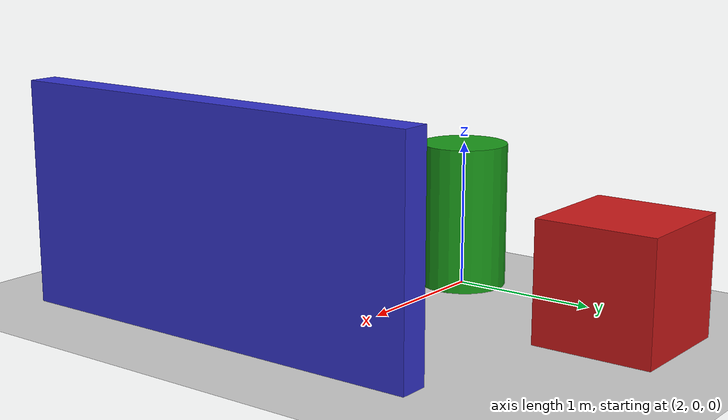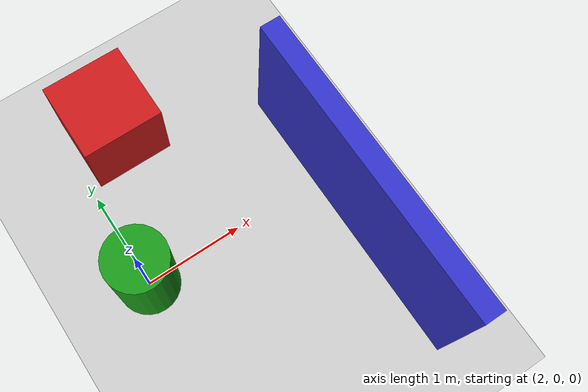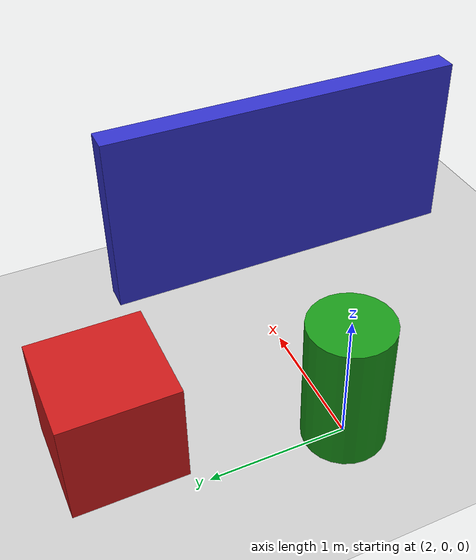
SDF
<?xml version="1.0" ?>
<sdf version="1.7">
  <world name="obstacle_world">

    <!-- Ground Plane -->
    <model name="ground_plane">
      <static>true</static>
      <link name="link">
        <collision name="collision">
          <geometry>
            <plane>
              <normal>0 0 1</normal>
              <size>100 100</size>
            </plane>
          </geometry>
        </collision>
        <visual name="visual">
          <geometry>
            <plane>
              <normal>0 0 1</normal>
              <size>100 100</size>
            </plane>
          </geometry>
          <material>
            <ambient>0.8 0.8 0.8 1</ambient>
            <diffuse>0.8 0.8 0.8 1</diffuse>
          </material>
        </visual>
      </link>
    </model>

    <!-- Obstacle 1: Green Cylinder -->
    <model name="obstacle_cylinder_1">
      <static>true</static>
      <pose>2.0 0.0 0.5 0 0 0</pose>
      <link name="link">
        <collision name="collision">
          <geometry>
            <cylinder>
              <radius>0.3</radius>
              <length>1.0</length>
            </cylinder>
          </geometry>
        </collision>
        <visual name="visual">
          <geometry>
            <cylinder>
              <radius>0.3</radius>
              <length>1.0</length>
            </cylinder>
          </geometry>
          <material>
            <ambient>0.1 0.6 0.1 1</ambient>
            <diffuse>0.1 0.6 0.1 1</diffuse>
          </material>
        </visual>
      </link>
    </model>

    <!-- Obstacle 2: Red Box -->
    <model name="obstacle_box_1">
      <static>true</static>
      <pose>2.5 1.5 0.4 0 0 0</pose>
      <link name="link">
        <collision name="collision">
          <geometry>
            <box>
              <size>0.8 0.8 0.8</size>
            </box>
          </geometry>
        </collision>
        <visual name="visual">
          <geometry>
            <box>
              <size>0.8 0.8 0.8</size>
            </box>
          </geometry>
          <material>
            <ambient>0.8 0.1 0.1 1</ambient>
            <diffuse>0.8 0.1 0.1 1</diffuse>
          </material>
        </visual>
      </link>
    </model>

    <!-- Obstacle 3: Blue Wall Barrier -->
    <model name="obstacle_wall">
      <static>true</static>
      <pose>4.0 -0.5 0.75 0 0 0</pose>
      <link name="link">
        <collision name="collision">
          <geometry>
            <box>
              <size>0.2 3.0 1.5</size>
            </box>
          </geometry>
        </collision>
        <visual name="visual">
          <geometry>
            <box>
              <size>0.2 3.0 1.5</size>
            </box>
          </geometry>
          <material>
            <ambient>0.2 0.2 0.8 1</ambient>
            <diffuse>0.2 0.2 0.8 1</diffuse>
          </material>
        </visual>
      </link>
    </model>

  </world>
</sdf>
